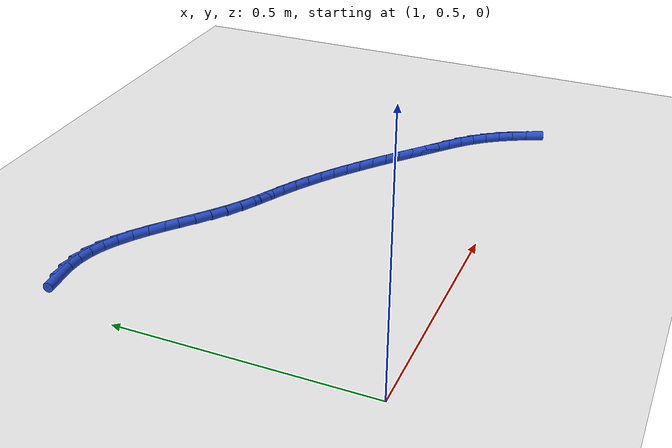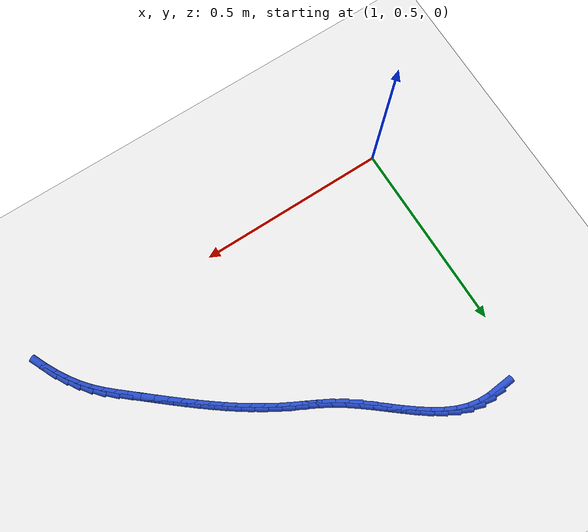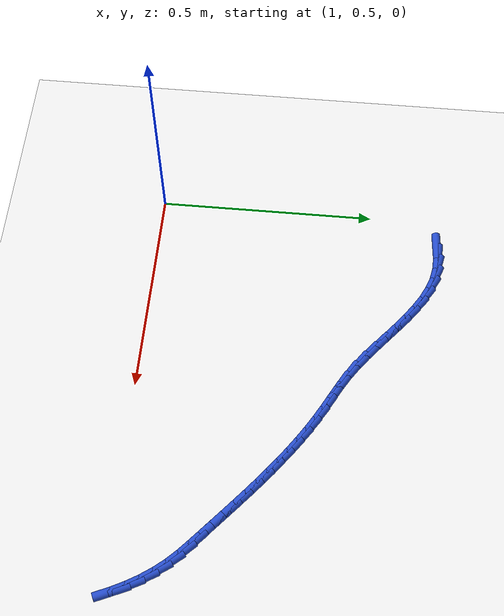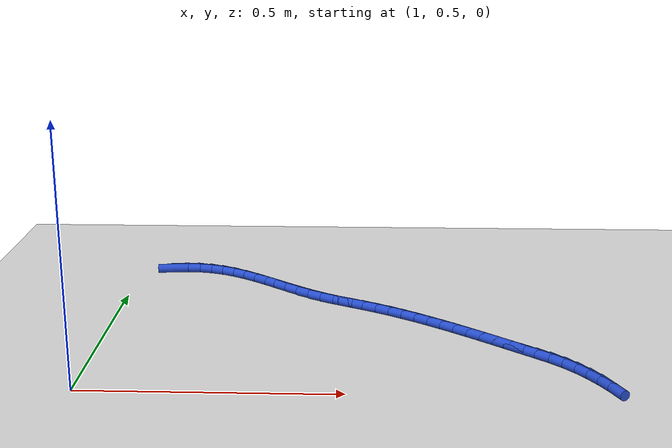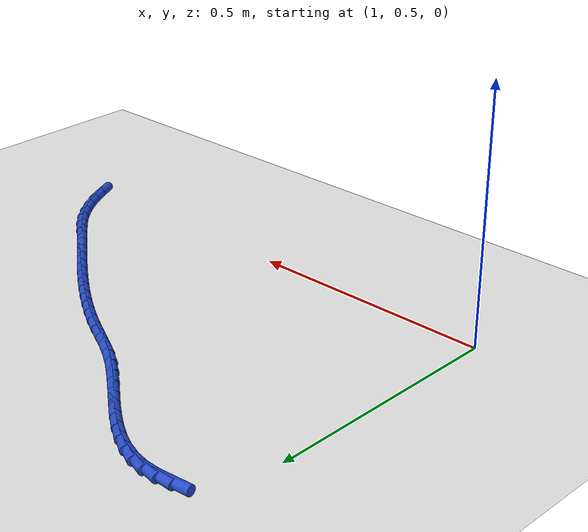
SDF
<sdf version="1.6">
 <world name="default">
  <model name="ground_plane">
   <static>1</static>
   <link name="link">
    <collision name="collision">
     <geometry><plane><normal>0 0 1</normal><size>100 100</size></plane></geometry>
     <surface><friction><ode><mu>100</mu><mu2>50</mu2></ode></friction></surface>
    </collision>
    <visual name="visual">
     <cast_shadows>0</cast_shadows>
     <geometry><plane><normal>0 0 1</normal><size>100 100</size></plane></geometry>
     <material>
      <script><uri>file://media/materials/scripts/gazebo.material</uri><name>Gazebo/WhiteGlow</name></script>
     </material>
    </visual>
   </link>
  </model>
  <model name="line">
   <link name="link_51">
    <pose>1.078466033614605 1.1613428061325675 0.01 0 1.57 0.09281971597217803</pose>
    <collision name="collision">
     <geometry><cylinder><radius>0.01</radius><length>0.08</length></cylinder></geometry>
    </collision>
    <visual name="visual">
     <material>
      <script><name>Gazebo/Blue</name><uri>file://media/materials/scripts/gazebo.material</uri></script>
     </material>
     <geometry><cylinder><radius>0.01</radius><length>0.08</length></cylinder></geometry>
    </visual>
   </link>
   <link name="link_52">
    <pose>1.108595487332477 1.1641474726335532 0.01 0 1.57 -0.03966695867732513</pose>
    <collision name="collision">
     <geometry><cylinder><radius>0.01</radius><length>0.08</length></cylinder></geometry>
    </collision>
    <visual name="visual">
     <material>
      <script><name>Gazebo/Blue</name><uri>file://media/materials/scripts/gazebo.material</uri></script>
     </material>
     <geometry><cylinder><radius>0.01</radius><length>0.08</length></cylinder></geometry>
    </visual>
   </link>
   <link name="link_53">
    <pose>1.1381289241440744 1.1629753561890308 0.01 0 1.57 -0.1917910922669778</pose>
    <collision name="collision">
     <geometry><cylinder><radius>0.01</radius><length>0.08</length></cylinder></geometry>
    </collision>
    <visual name="visual">
     <material>
      <script><name>Gazebo/Blue</name><uri>file://media/materials/scripts/gazebo.material</uri></script>
     </material>
     <geometry><cylinder><radius>0.01</radius><length>0.08</length></cylinder></geometry>
    </visual>
   </link>
   <link name="link_54">
    <pose>1.166961019299047 1.1573768028403908 0.01 0 1.57 -0.34009776362689115</pose>
    <collision name="collision">
     <geometry><cylinder><radius>0.01</radius><length>0.08</length></cylinder></geometry>
    </collision>
    <visual name="visual">
     <material>
      <script><name>Gazebo/Blue</name><uri>file://media/materials/scripts/gazebo.material</uri></script>
     </material>
     <geometry><cylinder><radius>0.01</radius><length>0.08</length></cylinder></geometry>
    </visual>
   </link>
   <link name="link_55">
    <pose>1.1950973265280922 1.1474208583517393 0.01 0 1.57 -0.4599225659053167</pose>
    <collision name="collision">
     <geometry><cylinder><radius>0.01</radius><length>0.08</length></cylinder></geometry>
    </collision>
    <visual name="visual">
     <material>
      <script><name>Gazebo/Blue</name><uri>file://media/materials/scripts/gazebo.material</uri></script>
     </material>
     <geometry><cylinder><radius>0.01</radius><length>0.08</length></cylinder></geometry>
    </visual>
   </link>
   <link name="link_56">
    <pose>1.2226688118757438 1.1337632588151705 0.01 0 1.57 -0.5507930033713385</pose>
    <collision name="collision">
     <geometry><cylinder><radius>0.01</radius><length>0.08</length></cylinder></geometry>
    </collision>
    <visual name="visual">
     <material>
      <script><name>Gazebo/Blue</name><uri>file://media/materials/scripts/gazebo.material</uri></script>
     </material>
     <geometry><cylinder><radius>0.01</radius><length>0.08</length></cylinder></geometry>
    </visual>
   </link>
   <link name="link_57">
    <pose>1.2498131818181022 1.1170912726810192 0.01 0 1.57 -0.6157224338253602</pose>
    <collision name="collision">
     <geometry><cylinder><radius>0.01</radius><length>0.08</length></cylinder></geometry>
    </collision>
    <visual name="visual">
     <material>
      <script><name>Gazebo/Blue</name><uri>file://media/materials/scripts/gazebo.material</uri></script>
     </material>
     <geometry><cylinder><radius>0.01</radius><length>0.08</length></cylinder></geometry>
    </visual>
   </link>
   <link name="link_58">
    <pose>1.276668142831268 1.09809216839962 0.01 0 1.57 -0.657996873678657</pose>
    <collision name="collision">
     <geometry><cylinder><radius>0.01</radius><length>0.08</length></cylinder></geometry>
    </collision>
    <visual name="visual">
     <material>
      <script><name>Gazebo/Blue</name><uri>file://media/materials/scripts/gazebo.material</uri></script>
     </material>
     <geometry><cylinder><radius>0.01</radius><length>0.08</length></cylinder></geometry>
    </visual>
   </link>
   <link name="link_59">
    <pose>1.303371401391344 1.0774532144213087 0.01 0 1.57 -0.680202934170221</pose>
    <collision name="collision">
     <geometry><cylinder><radius>0.01</radius><length>0.08</length></cylinder></geometry>
    </collision>
    <visual name="visual">
     <material>
      <script><name>Gazebo/Blue</name><uri>file://media/materials/scripts/gazebo.material</uri></script>
     </material>
     <geometry><cylinder><radius>0.01</radius><length>0.08</length></cylinder></geometry>
    </visual>
   </link>
   <link name="link_60">
    <pose>1.3300606639744306 1.0558616791964186 0.01 0 1.57 -0.6839163904575002</pose>
    <collision name="collision">
     <geometry><cylinder><radius>0.01</radius><length>0.08</length></cylinder></geometry>
    </collision>
    <visual name="visual">
     <material>
      <script><name>Gazebo/Blue</name><uri>file://media/materials/scripts/gazebo.material</uri></script>
     </material>
     <geometry><cylinder><radius>0.01</radius><length>0.08</length></cylinder></geometry>
    </visual>
   </link>
   <link name="link_61">
    <pose>1.3568736370566292 1.0340048311752867 0.01 0 1.57 -0.6696616558193815</pose>
    <collision name="collision">
     <geometry><cylinder><radius>0.01</radius><length>0.08</length></cylinder></geometry>
    </collision>
    <visual name="visual">
     <material>
      <script><name>Gazebo/Blue</name><uri>file://media/materials/scripts/gazebo.material</uri></script>
     </material>
     <geometry><cylinder><radius>0.01</radius><length>0.08</length></cylinder></geometry>
    </visual>
   </link>
   <link name="link_62">
    <pose>1.3839480271140405 1.0125699388082463 0.01 0 1.57 -0.6369590323550663</pose>
    <collision name="collision">
     <geometry><cylinder><radius>0.01</radius><length>0.08</length></cylinder></geometry>
    </collision>
    <visual name="visual">
     <material>
      <script><name>Gazebo/Blue</name><uri>file://media/materials/scripts/gazebo.material</uri></script>
     </material>
     <geometry><cylinder><radius>0.01</radius><length>0.08</length></cylinder></geometry>
    </visual>
   </link>
   <link name="link_63">
    <pose>1.4114215406227668 0.9922442705456329 0.01 0 1.57 -0.5844747264140719</pose>
    <collision name="collision">
     <geometry><cylinder><radius>0.01</radius><length>0.08</length></cylinder></geometry>
    </collision>
    <visual name="visual">
     <material>
      <script><name>Gazebo/Blue</name><uri>file://media/materials/scripts/gazebo.material</uri></script>
     </material>
     <geometry><cylinder><radius>0.01</radius><length>0.08</length></cylinder></geometry>
    </visual>
   </link>
   <link name="link_64">
    <pose>1.4394314014873948 0.9737134289292353 0.01 0 1.57 -0.5236642777383865</pose>
    <collision name="collision">
     <geometry><cylinder><radius>0.01</radius><length>0.08</length></cylinder></geometry>
    </collision>
    <visual name="visual">
     <material>
      <script><name>Gazebo/Blue</name><uri>file://media/materials/scripts/gazebo.material</uri></script>
     </material>
     <geometry><cylinder><radius>0.01</radius><length>0.08</length></cylinder></geometry>
    </visual>
   </link>
   <link name="link_65">
    <pose>1.4679876542924473 0.9572239745966382 0.01 0 1.57 -0.4861318237874761</pose>
    <collision name="collision">
     <geometry><cylinder><radius>0.01</radius><length>0.08</length></cylinder></geometry>
    </collision>
    <visual name="visual">
     <material>
      <script><name>Gazebo/Blue</name><uri>file://media/materials/scripts/gazebo.material</uri></script>
     </material>
     <geometry><cylinder><radius>0.01</radius><length>0.08</length></cylinder></geometry>
    </visual>
   </link>
   <link name="link_66">
    <pose>1.4968032756319798 0.9419969453555713 0.01 0 1.57 -0.47793020519699464</pose>
    <collision name="collision">
     <geometry><cylinder><radius>0.01</radius><length>0.08</length></cylinder></geometry>
    </collision>
    <visual name="visual">
     <material>
      <script><name>Gazebo/Blue</name><uri>file://media/materials/scripts/gazebo.material</uri></script>
     </material>
     <geometry><cylinder><radius>0.01</radius><length>0.08</length></cylinder></geometry>
    </visual>
   </link>
   <link name="link_67">
    <pose>1.5255488989919588 0.9271072043149575 0.01 0 1.57 -0.49919408141470795</pose>
    <collision name="collision">
     <geometry><cylinder><radius>0.01</radius><length>0.08</length></cylinder></geometry>
    </collision>
    <visual name="visual">
     <material>
      <script><name>Gazebo/Blue</name><uri>file://media/materials/scripts/gazebo.material</uri></script>
     </material>
     <geometry><cylinder><radius>0.01</radius><length>0.08</length></cylinder></geometry>
    </visual>
   </link>
   <link name="link_68">
    <pose>1.5539018232961532 0.9116475878160404 0.01 0 1.57 -0.5344796447297622</pose>
    <collision name="collision">
     <geometry><cylinder><radius>0.01</radius><length>0.08</length></cylinder></geometry>
    </collision>
    <visual name="visual">
     <material>
      <script><name>Gazebo/Blue</name><uri>file://media/materials/scripts/gazebo.material</uri></script>
     </material>
     <geometry><cylinder><radius>0.01</radius><length>0.08</length></cylinder></geometry>
    </visual>
   </link>
   <link name="link_69">
    <pose>1.5817146931519512 0.8951837486604277 0.01 0 1.57 -0.5670515454106667</pose>
    <collision name="collision">
     <geometry><cylinder><radius>0.01</radius><length>0.08</length></cylinder></geometry>
    </collision>
    <visual name="visual">
     <material>
      <script><name>Gazebo/Blue</name><uri>file://media/materials/scripts/gazebo.material</uri></script>
     </material>
     <geometry><cylinder><radius>0.01</radius><length>0.08</length></cylinder></geometry>
    </visual>
   </link>
   <link name="link_70">
    <pose>1.6090286949841595 0.8777897392459002 0.01 0 1.57 -0.596066018508946</pose>
    <collision name="collision">
     <geometry><cylinder><radius>0.01</radius><length>0.08</length></cylinder></geometry>
    </collision>
    <visual name="visual">
     <material>
      <script><name>Gazebo/Blue</name><uri>file://media/materials/scripts/gazebo.material</uri></script>
     </material>
     <geometry><cylinder><radius>0.01</radius><length>0.08</length></cylinder></geometry>
    </visual>
   </link>
   <link name="link_71">
    <pose>1.6358943242389046 0.8595647135776405 0.01 0 1.57 -0.6215329833264673</pose>
    <collision name="collision">
     <geometry><cylinder><radius>0.01</radius><length>0.08</length></cylinder></geometry>
    </collision>
    <visual name="visual">
     <material>
      <script><name>Gazebo/Blue</name><uri>file://media/materials/scripts/gazebo.material</uri></script>
     </material>
     <geometry><cylinder><radius>0.01</radius><length>0.08</length></cylinder></geometry>
    </visual>
   </link>
   <link name="link_72">
    <pose>1.6623620763623148 0.840607825660832 0.01 0 1.57 -0.6434844063773704</pose>
    <collision name="collision">
     <geometry><cylinder><radius>0.01</radius><length>0.08</length></cylinder></geometry>
    </collision>
    <visual name="visual">
     <material>
      <script><name>Gazebo/Blue</name><uri>file://media/materials/scripts/gazebo.material</uri></script>
     </material>
     <geometry><cylinder><radius>0.01</radius><length>0.08</length></cylinder></geometry>
    </visual>
   </link>
   <link name="link_73">
    <pose>1.688482446800518 0.8210182295006576 0.01 0 1.57 -0.6619646491497485</pose>
    <collision name="collision">
     <geometry><cylinder><radius>0.01</radius><length>0.08</length></cylinder></geometry>
    </collision>
    <visual name="visual">
     <material>
      <script><name>Gazebo/Blue</name><uri>file://media/materials/scripts/gazebo.material</uri></script>
     </material>
     <geometry><cylinder><radius>0.01</radius><length>0.08</length></cylinder></geometry>
    </visual>
   </link>
   <link name="link_74">
    <pose>1.7143059309996387 0.8008950791023004 0.01 0 1.57 -0.6770224412729487</pose>
    <collision name="collision">
     <geometry><cylinder><radius>0.01</radius><length>0.08</length></cylinder></geometry>
    </collision>
    <visual name="visual">
     <material>
      <script><name>Gazebo/Blue</name><uri>file://media/materials/scripts/gazebo.material</uri></script>
     </material>
     <geometry><cylinder><radius>0.01</radius><length>0.08</length></cylinder></geometry>
    </visual>
   </link>
   <link name="link_75">
    <pose>1.7398830244058057 0.7803375284709433 0.01 0 1.57 -0.6887044562731689</pose>
    <collision name="collision">
     <geometry><cylinder><radius>0.01</radius><length>0.08</length></cylinder></geometry>
    </collision>
    <visual name="visual">
     <material>
      <script><name>Gazebo/Blue</name><uri>file://media/materials/scripts/gazebo.material</uri></script>
     </material>
     <geometry><cylinder><radius>0.01</radius><length>0.08</length></cylinder></geometry>
    </visual>
   </link>
   <link name="link_76">
    <pose>1.7652642224651467 0.7594447316117692 0.01 0 1.57 -0.6970503605692058</pose>
    <collision name="collision">
     <geometry><cylinder><radius>0.01</radius><length>0.08</length></cylinder></geometry>
    </collision>
    <visual name="visual">
     <material>
      <script><name>Gazebo/Blue</name><uri>file://media/materials/scripts/gazebo.material</uri></script>
     </material>
     <geometry><cylinder><radius>0.01</radius><length>0.08</length></cylinder></geometry>
    </visual>
   </link>
   <link name="link_77">
    <pose>1.7905000206237873 0.7383158425299617 0.01 0 1.57 -0.7020891653134775</pose>
    <collision name="collision">
     <geometry><cylinder><radius>0.01</radius><length>0.08</length></cylinder></geometry>
    </collision>
    <visual name="visual">
     <material>
      <script><name>Gazebo/Blue</name><uri>file://media/materials/scripts/gazebo.material</uri></script>
     </material>
     <geometry><cylinder><radius>0.01</radius><length>0.08</length></cylinder></geometry>
    </visual>
   </link>
   <link name="link_78">
    <pose>1.8156409143278553 0.7170500152307032 0.01 0 1.57 -0.7038367151269698</pose>
    <collision name="collision">
     <geometry><cylinder><radius>0.01</radius><length>0.08</length></cylinder></geometry>
    </collision>
    <visual name="visual">
     <material>
      <script><name>Gazebo/Blue</name><uri>file://media/materials/scripts/gazebo.material</uri></script>
     </material>
     <geometry><cylinder><radius>0.01</radius><length>0.08</length></cylinder></geometry>
    </visual>
   </link>
   <link name="link_79">
    <pose>1.840737399023478 0.695746403719177 0.01 0 1.57 -0.7030758532807119</pose>
    <collision name="collision">
     <geometry><cylinder><radius>0.01</radius><length>0.08</length></cylinder></geometry>
    </collision>
    <visual name="visual">
     <material>
      <script><name>Gazebo/Blue</name><uri>file://media/materials/scripts/gazebo.material</uri></script>
     </material>
     <geometry><cylinder><radius>0.01</radius><length>0.08</length></cylinder></geometry>
    </visual>
   </link>
   <link name="link_80">
    <pose>1.8658194737650313 0.6744878386637119 0.01 0 1.57 -0.7220990506454535</pose>
    <collision name="collision">
     <geometry><cylinder><radius>0.01</radius><length>0.08</length></cylinder></geometry>
    </collision>
    <visual name="visual">
     <material>
      <script><name>Gazebo/Blue</name><uri>file://media/materials/scripts/gazebo.material</uri></script>
     </material>
     <geometry><cylinder><radius>0.01</radius><length>0.08</length></cylinder></geometry>
    </visual>
   </link>
   <link name="link_81">
    <pose>1.8903357805490892 0.6528941576750162 0.01 0 1.57 -0.7860847828715408</pose>
    <collision name="collision">
     <geometry><cylinder><radius>0.01</radius><length>0.08</length></cylinder></geometry>
    </collision>
    <visual name="visual">
     <material>
      <script><name>Gazebo/Blue</name><uri>file://media/materials/scripts/gazebo.material</uri></script>
     </material>
     <geometry><cylinder><radius>0.01</radius><length>0.08</length></cylinder></geometry>
    </visual>
   </link>
   <link name="link_82">
    <pose>1.9131115046539433 0.6300871355640093 0.01 0 1.57 -0.872671191078274</pose>
    <collision name="collision">
     <geometry><cylinder><radius>0.01</radius><length>0.08</length></cylinder></geometry>
    </collision>
    <visual name="visual">
     <material>
      <script><name>Gazebo/Blue</name><uri>file://media/materials/scripts/gazebo.material</uri></script>
     </material>
     <geometry><cylinder><radius>0.01</radius><length>0.08</length></cylinder></geometry>
    </visual>
   </link>
   <link name="link_83">
    <pose>1.9336100263589864 0.6056576229691913 0.01 0 1.57 -0.9539178261977622</pose>
    <collision name="collision">
     <geometry><cylinder><radius>0.01</radius><length>0.08</length></cylinder></geometry>
    </collision>
    <visual name="visual">
     <material>
      <script><name>Gazebo/Blue</name><uri>file://media/materials/scripts/gazebo.material</uri></script>
     </material>
     <geometry><cylinder><radius>0.01</radius><length>0.08</length></cylinder></geometry>
    </visual>
   </link>
   <link name="link_84">
    <pose>1.9520047649566648 0.5797205730562294 0.01 0 1.57 -1.0272689954622503</pose>
    <collision name="collision">
     <geometry><cylinder><radius>0.01</radius><length>0.08</length></cylinder></geometry>
    </collision>
    <visual name="visual">
     <material>
      <script><name>Gazebo/Blue</name><uri>file://media/materials/scripts/gazebo.material</uri></script>
     </material>
     <geometry><cylinder><radius>0.01</radius><length>0.08</length></cylinder></geometry>
    </visual>
   </link>
   <link name="link_85">
    <pose>1.9685031193159659 0.5524160204040786 0.01 0 1.57 -1.0920299922768517</pose>
    <collision name="collision">
     <geometry><cylinder><radius>0.01</radius><length>0.08</length></cylinder></geometry>
    </collision>
    <visual name="visual">
     <material>
      <script><name>Gazebo/Blue</name><uri>file://media/materials/scripts/gazebo.material</uri></script>
     </material>
     <geometry><cylinder><radius>0.01</radius><length>0.08</length></cylinder></geometry>
    </visual>
   </link>
   <link name="link_86">
    <pose>1.9833124883058761 0.5238839995916951 0.01 0 1.57 -1.1479696906871482</pose>
    <collision name="collision">
     <geometry><cylinder><radius>0.01</radius><length>0.08</length></cylinder></geometry>
    </collision>
    <visual name="visual">
     <material>
      <script><name>Gazebo/Blue</name><uri>file://media/materials/scripts/gazebo.material</uri></script>
     </material>
     <geometry><cylinder><radius>0.01</radius><length>0.08</length></cylinder></geometry>
    </visual>
   </link>
  </model>
 </world>
</sdf>
